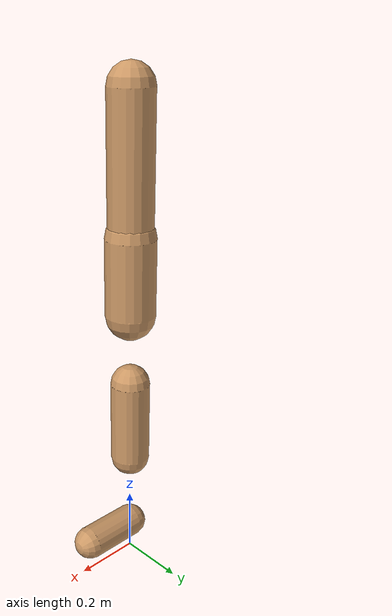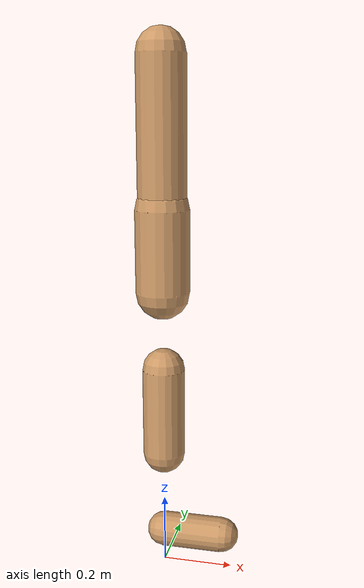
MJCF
<mujoco model="walker2d">
  <compiler angle="degree" coordinate="global" inertiafromgeom="true" />
  <default>
    <joint armature="0.01" damping=".1" limited="true" />
    <geom conaffinity="0" condim="3" contype="1" density="1000" friction="0.8 .1 .1" rgba="0.8 0.6 .4 1" />
  </default>
  <option integrator="RK4" timestep="0.002" />
  <worldbody>

    <body name="torso" pos="0 0 -0.470415051098593">
      <joint armature="0" axis="1 0 0" damping="0" limited="false" name="ignorex" pos="0 0 0" stiffness="0" type="slide" />
      <joint armature="0" axis="0 0 1" damping="0" limited="false" name="ignorez" pos="0 0 0" ref="1.25" stiffness="0" type="slide" />
      <joint armature="0" axis="0 1 0" damping="0" limited="false" name="ignorey" pos="0 0 0" stiffness="0" type="hinge" />
      <geom fromto="0 0 1.45 0 0 1.05" name="torso_geom" size="0.06667721810394553" type="capsule" />
      <body name="thigh">
        <joint axis="0 -1 0" name="thigh_joint" pos="0 0 1.05" range="-150 0" type="hinge" />
        <geom fromto="0.0 0.0 1.05 0.0 0.0 0.8228281820993335" name="thigh_geom" size="0.07479577103792943" type="capsule" />
        <body name="leg" pos="0.0 0.0 0.22282818209933353">
          <joint axis="0 -1 0" name="leg_joint" pos="0 0 0.6" range="-150 0" type="hinge" />
          <geom fromto="0.0 0.0 0.6 0.0 0.0 0.34758686899925945" name="leg_geom" size="0.05983661683034354" type="capsule" />
          <body name="foot" pos="0.0 0.0 0.24758686899925944">
            <joint axis="0 -1 0" name="foot_joint" pos="0 0 0.1" range="-45 45" type="hinge" />
            <geom fromto="0.0 0.0 0.10000000000000002 0.17013272809660596 0.0 0.10000000000000002" name="foot_geom" size="0.049985578287638686" type="capsule" />
          </body>
        </body>
      </body>

      <body name="thigh_left">
        <joint axis="0 -1 0" name="thigh_left_joint" pos="0 0 1.05" range="-150 0" type="hinge" />
        <geom fromto="0.0 0.0 1.05 0.0 0.0 0.8228281820993335" name="thigh_left_geom" rgba=".7 .3 .6 1" size="0.07479577103792943" type="capsule" />
        <body name="leg_left" pos="0.0 0.0 0.22282818209933353">
          <joint axis="0 -1 0" name="leg_left_joint" pos="0 0 0.6" range="-150 0" type="hinge" />
          <geom fromto="0.0 0.0 0.6 0.0 0.0 0.34758686899925945" name="leg_left_geom" rgba=".7 .3 .6 1" size="0.05983661683034354" type="capsule" />
          <body name="foot_left" pos="0.0 0.0 0.24758686899925944">
            <joint axis="0 -1 0" name="foot_left_joint" pos="0 0 0.1" range="-45 45" type="hinge" />
            <geom fromto="0.0 0.0 0.10000000000000002 0.17013272809660596 0.0 0.10000000000000002" name="foot_left_geom" rgba=".7 .3 .6 1" size="0.049985578287638686" type="capsule" />
          </body>
        </body>
      </body>
    </body>
  </worldbody>
  <actuator>

    <motor ctrllimited="true" ctrlrange="-1.0 1.0" gear="100" joint="thigh_joint" />
    <motor ctrllimited="true" ctrlrange="-1.0 1.0" gear="100" joint="leg_joint" />
    <motor ctrllimited="true" ctrlrange="-1.0 1.0" gear="100" joint="foot_joint" />
    <motor ctrllimited="true" ctrlrange="-1.0 1.0" gear="100" joint="thigh_left_joint" />
    <motor ctrllimited="true" ctrlrange="-1.0 1.0" gear="100" joint="leg_left_joint" />
    <motor ctrllimited="true" ctrlrange="-1.0 1.0" gear="100" joint="foot_left_joint" />

  </actuator>
</mujoco>
